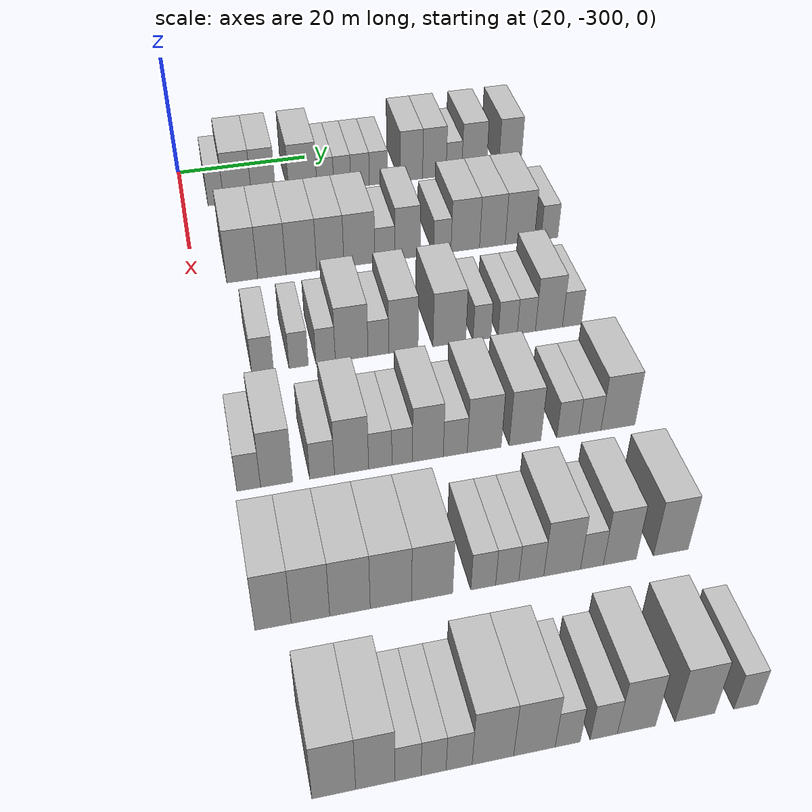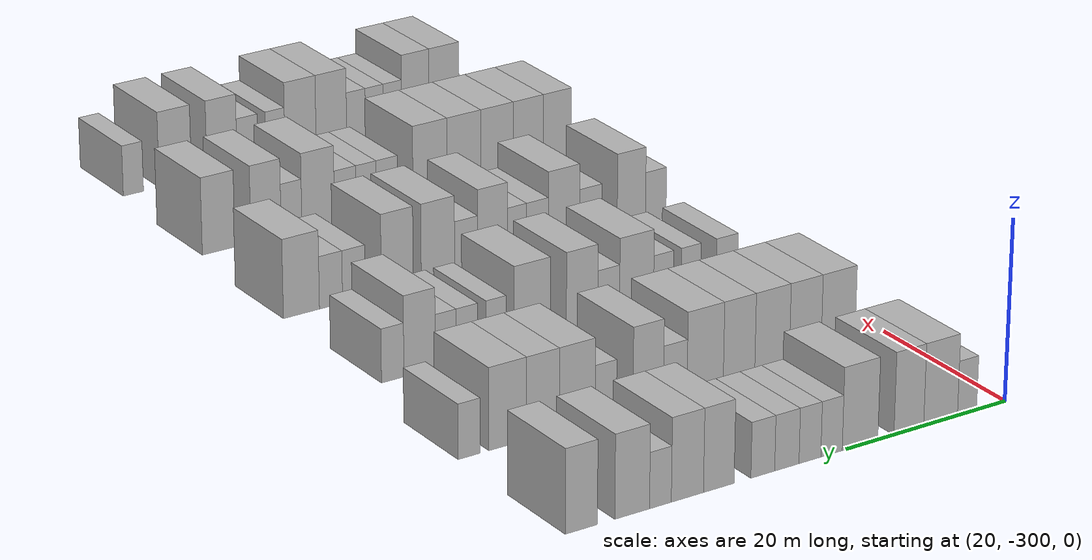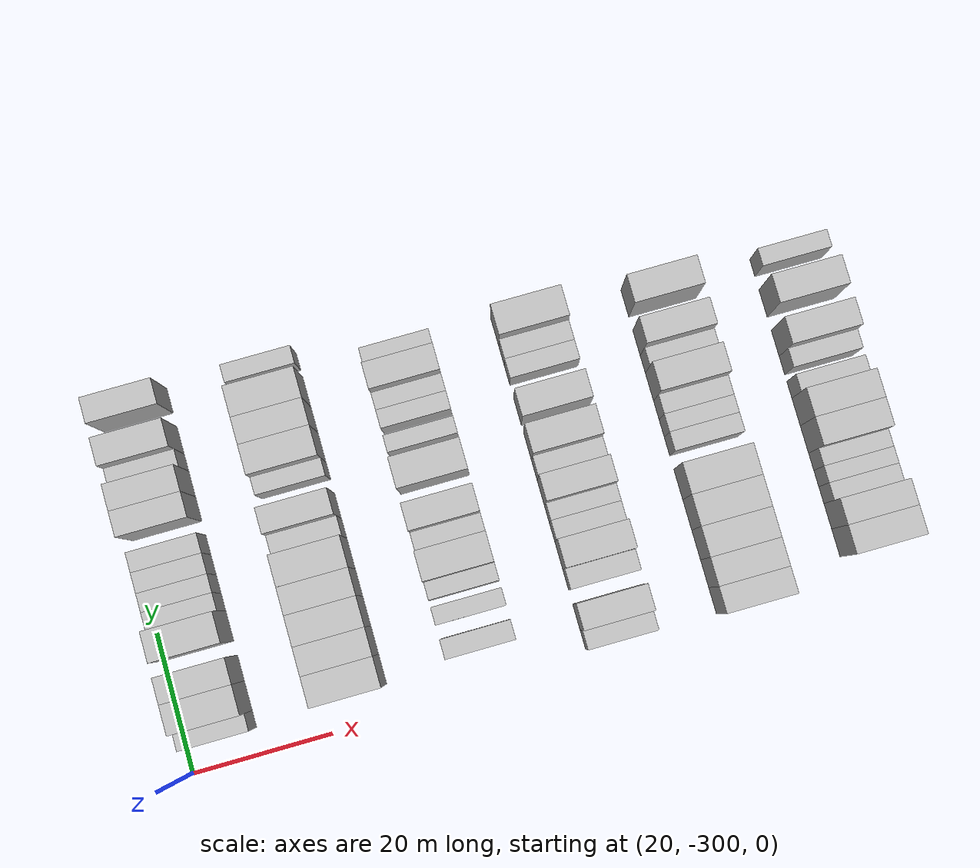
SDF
<sdf version="1.6">
 <world name="default">
  <model name="building_16">
   <static>1</static>
   <pose>25.0000 -295.1014 0 0.000000 0.000000 0.000000</pose>
   <link name="link">
    <pose>0 0 3.00 0 0 0</pose>
    <collision name="collision"><geometry><box><size>10.0000 2.4240 6.0000</size></box></geometry></collision>
    <visual name="visual">
     <cast_shadows>0</cast_shadows>
     <geometry><box><size>10.0000 2.4240 6.0000</size></box></geometry>
     <material>
      <script>
       <uri>model://HANNAS_wall/materials/scripts</uri>
       <uri>model://HANNAS_wall/materials/textures</uri>
       <name>vrc/HANNAS_wall</name>
      </script>
     </material>
    </visual>
   </link>
  </model>
  <model name="building_17">
   <static>1</static>
   <pose>25.0000 -291.7622 0 0.000000 0.000000 0.000000</pose>
   <link name="link">
    <pose>0 0 4.50 0 0 0</pose>
    <collision name="collision"><geometry><box><size>10.0000 4.2544 9.0000</size></box></geometry></collision>
    <visual name="visual">
     <cast_shadows>0</cast_shadows>
     <geometry><box><size>10.0000 4.2544 9.0000</size></box></geometry>
     <material>
      <script>
       <uri>model://HANNAS_wall/materials/scripts</uri>
       <uri>model://HANNAS_wall/materials/textures</uri>
       <name>vrc/HANNAS_wall</name>
      </script>
     </material>
    </visual>
   </link>
  </model>
  <model name="building_18">
   <static>1</static>
   <pose>25.0000 -287.7833 0 0.000000 0.000000 0.000000</pose>
   <link name="link">
    <pose>0 0 4.50 0 0 0</pose>
    <collision name="collision"><geometry><box><size>10.0000 3.7033 9.0000</size></box></geometry></collision>
    <visual name="visual">
     <cast_shadows>0</cast_shadows>
     <geometry><box><size>10.0000 3.7033 9.0000</size></box></geometry>
     <material>
      <script>
       <uri>model://HANNAS_wall/materials/scripts</uri>
       <uri>model://HANNAS_wall/materials/textures</uri>
       <name>vrc/HANNAS_wall</name>
      </script>
     </material>
    </visual>
   </link>
  </model>
  <model name="building_19">
   <static>1</static>
   <pose>25.0000 -281.7414 0 0.000000 0.000000 0.000000</pose>
   <link name="link">
    <pose>0 0 4.50 0 0 0</pose>
    <collision name="collision"><geometry><box><size>10.0000 4.3806 9.0000</size></box></geometry></collision>
    <visual name="visual">
     <cast_shadows>0</cast_shadows>
     <geometry><box><size>10.0000 4.3806 9.0000</size></box></geometry>
     <material>
      <script>
       <uri>model://HANNAS_wall/materials/scripts</uri>
       <uri>model://HANNAS_wall/materials/textures</uri>
       <name>vrc/HANNAS_wall</name>
      </script>
     </material>
    </visual>
   </link>
  </model>
  <model name="building_20">
   <static>1</static>
   <pose>25.0000 -278.2436 0 0.000000 0.000000 0.000000</pose>
   <link name="link">
    <pose>0 0 3.00 0 0 0</pose>
    <collision name="collision"><geometry><box><size>10.0000 2.6150 6.0000</size></box></geometry></collision>
    <visual name="visual">
     <cast_shadows>0</cast_shadows>
     <geometry><box><size>10.0000 2.6150 6.0000</size></box></geometry>
     <material>
      <script>
       <uri>model://HANNAS_wall/materials/scripts</uri>
       <uri>model://HANNAS_wall/materials/textures</uri>
       <name>vrc/HANNAS_wall</name>
      </script>
     </material>
    </visual>
   </link>
  </model>
  <model name="building_21">
   <static>1</static>
   <pose>25.0000 -275.6097 0 0.000000 0.000000 0.000000</pose>
   <link name="link">
    <pose>0 0 3.00 0 0 0</pose>
    <collision name="collision"><geometry><box><size>10.0000 2.6527 6.0000</size></box></geometry></collision>
    <visual name="visual">
     <cast_shadows>0</cast_shadows>
     <geometry><box><size>10.0000 2.6527 6.0000</size></box></geometry>
     <material>
      <script>
       <uri>model://HANNAS_wall/materials/scripts</uri>
       <uri>model://HANNAS_wall/materials/textures</uri>
       <name>vrc/HANNAS_wall</name>
      </script>
     </material>
    </visual>
   </link>
  </model>
  <model name="building_22">
   <static>1</static>
   <pose>25.0000 -272.8170 0 0.000000 0.000000 0.000000</pose>
   <link name="link">
    <pose>0 0 3.00 0 0 0</pose>
    <collision name="collision"><geometry><box><size>10.0000 2.9329 6.0000</size></box></geometry></collision>
    <visual name="visual">
     <cast_shadows>0</cast_shadows>
     <geometry><box><size>10.0000 2.9329 6.0000</size></box></geometry>
     <material>
      <script>
       <uri>model://HANNAS_wall/materials/scripts</uri>
       <uri>model://HANNAS_wall/materials/textures</uri>
       <name>vrc/HANNAS_wall</name>
      </script>
     </material>
    </visual>
   </link>
  </model>
  <model name="building_23">
   <static>1</static>
   <pose>25.0000 -269.9229 0 0.000000 0.000000 0.000000</pose>
   <link name="link">
    <pose>0 0 3.00 0 0 0</pose>
    <collision name="collision"><geometry><box><size>10.0000 2.8552 6.0000</size></box></geometry></collision>
    <visual name="visual">
     <cast_shadows>0</cast_shadows>
     <geometry><box><size>10.0000 2.8552 6.0000</size></box></geometry>
     <material>
      <script>
       <uri>model://HANNAS_wall/materials/scripts</uri>
       <uri>model://HANNAS_wall/materials/textures</uri>
       <name>vrc/HANNAS_wall</name>
      </script>
     </material>
    </visual>
   </link>
  </model>
  <model name="building_24">
   <static>1</static>
   <pose>25.0000 -264.6804 0 0.000000 0.000000 0.000000</pose>
   <link name="link">
    <pose>0 0 4.50 0 0 0</pose>
    <collision name="collision"><geometry><box><size>10.0000 3.6300 9.0000</size></box></geometry></collision>
    <visual name="visual">
     <cast_shadows>0</cast_shadows>
     <geometry><box><size>10.0000 3.6300 9.0000</size></box></geometry>
     <material>
      <script>
       <uri>model://HANNAS_wall/materials/scripts</uri>
       <uri>model://HANNAS_wall/materials/textures</uri>
       <name>vrc/HANNAS_wall</name>
      </script>
     </material>
    </visual>
   </link>
  </model>
  <model name="building_25">
   <static>1</static>
   <pose>25.0000 -260.9767 0 0.000000 0.000000 0.000000</pose>
   <link name="link">
    <pose>0 0 4.50 0 0 0</pose>
    <collision name="collision"><geometry><box><size>10.0000 3.7774 9.0000</size></box></geometry></collision>
    <visual name="visual">
     <cast_shadows>0</cast_shadows>
     <geometry><box><size>10.0000 3.7774 9.0000</size></box></geometry>
     <material>
      <script>
       <uri>model://HANNAS_wall/materials/scripts</uri>
       <uri>model://HANNAS_wall/materials/textures</uri>
       <name>vrc/HANNAS_wall</name>
      </script>
     </material>
    </visual>
   </link>
  </model>
  <model name="building_26">
   <static>1</static>
   <pose>25.0000 -257.8178 0 0.000000 0.000000 0.000000</pose>
   <link name="link">
    <pose>0 0 3.00 0 0 0</pose>
    <collision name="collision"><geometry><box><size>10.0000 2.5404 6.0000</size></box></geometry></collision>
    <visual name="visual">
     <cast_shadows>0</cast_shadows>
     <geometry><box><size>10.0000 2.5404 6.0000</size></box></geometry>
     <material>
      <script>
       <uri>model://HANNAS_wall/materials/scripts</uri>
       <uri>model://HANNAS_wall/materials/textures</uri>
       <name>vrc/HANNAS_wall</name>
      </script>
     </material>
    </visual>
   </link>
  </model>
  <model name="building_27">
   <static>1</static>
   <pose>25.0000 -254.5381 0 0.000000 0.000000 0.000000</pose>
   <link name="link">
    <pose>0 0 4.50 0 0 0</pose>
    <collision name="collision"><geometry><box><size>10.0000 4.0191 9.0000</size></box></geometry></collision>
    <visual name="visual">
     <cast_shadows>0</cast_shadows>
     <geometry><box><size>10.0000 4.0191 9.0000</size></box></geometry>
     <material>
      <script>
       <uri>model://HANNAS_wall/materials/scripts</uri>
       <uri>model://HANNAS_wall/materials/textures</uri>
       <name>vrc/HANNAS_wall</name>
      </script>
     </material>
    </visual>
   </link>
  </model>
  <model name="building_28">
   <static>1</static>
   <pose>25.0000 -248.6928 0 0.000000 0.000000 0.000000</pose>
   <link name="link">
    <pose>0 0 4.50 0 0 0</pose>
    <collision name="collision"><geometry><box><size>10.0000 3.6715 9.0000</size></box></geometry></collision>
    <visual name="visual">
     <cast_shadows>0</cast_shadows>
     <geometry><box><size>10.0000 3.6715 9.0000</size></box></geometry>
     <material>
      <script>
       <uri>model://HANNAS_wall/materials/scripts</uri>
       <uri>model://HANNAS_wall/materials/textures</uri>
       <name>vrc/HANNAS_wall</name>
      </script>
     </material>
    </visual>
   </link>
  </model>
  <model name="building_194">
   <static>1</static>
   <pose>44.0000 -293.3188 0 0.000000 0.000000 0.000000</pose>
   <link name="link">
    <pose>0 0 4.50 0 0 0</pose>
    <collision name="collision"><geometry><box><size>10.0000 4.3488 9.0000</size></box></geometry></collision>
    <visual name="visual">
     <cast_shadows>0</cast_shadows>
     <geometry><box><size>10.0000 4.3488 9.0000</size></box></geometry>
     <material>
      <script>
       <uri>model://HANNAS_wall/materials/scripts</uri>
       <uri>model://HANNAS_wall/materials/textures</uri>
       <name>vrc/HANNAS_wall</name>
      </script>
     </material>
    </visual>
   </link>
  </model>
  <model name="building_195">
   <static>1</static>
   <pose>44.0000 -289.1265 0 0.000000 0.000000 0.000000</pose>
   <link name="link">
    <pose>0 0 4.50 0 0 0</pose>
    <collision name="collision"><geometry><box><size>10.0000 4.0358 9.0000</size></box></geometry></collision>
    <visual name="visual">
     <cast_shadows>0</cast_shadows>
     <geometry><box><size>10.0000 4.0358 9.0000</size></box></geometry>
     <material>
      <script>
       <uri>model://HANNAS_wall/materials/scripts</uri>
       <uri>model://HANNAS_wall/materials/textures</uri>
       <name>vrc/HANNAS_wall</name>
      </script>
     </material>
    </visual>
   </link>
  </model>
  <model name="building_196">
   <static>1</static>
   <pose>44.0000 -284.9333 0 0.000000 0.000000 0.000000</pose>
   <link name="link">
    <pose>0 0 4.50 0 0 0</pose>
    <collision name="collision"><geometry><box><size>10.0000 4.3507 9.0000</size></box></geometry></collision>
    <visual name="visual">
     <cast_shadows>0</cast_shadows>
     <geometry><box><size>10.0000 4.3507 9.0000</size></box></geometry>
     <material>
      <script>
       <uri>model://HANNAS_wall/materials/scripts</uri>
       <uri>model://HANNAS_wall/materials/textures</uri>
       <name>vrc/HANNAS_wall</name>
      </script>
     </material>
    </visual>
   </link>
  </model>
  <model name="building_197">
   <static>1</static>
   <pose>44.0000 -280.7939 0 0.000000 0.000000 0.000000</pose>
   <link name="link">
    <pose>0 0 4.50 0 0 0</pose>
    <collision name="collision"><geometry><box><size>10.0000 3.9281 9.0000</size></box></geometry></collision>
    <visual name="visual">
     <cast_shadows>0</cast_shadows>
     <geometry><box><size>10.0000 3.9281 9.0000</size></box></geometry>
     <material>
      <script>
       <uri>model://HANNAS_wall/materials/scripts</uri>
       <uri>model://HANNAS_wall/materials/textures</uri>
       <name>vrc/HANNAS_wall</name>
      </script>
     </material>
    </visual>
   </link>
  </model>
  <model name="building_198">
   <static>1</static>
   <pose>44.0000 -276.5839 0 0.000000 0.000000 0.000000</pose>
   <link name="link">
    <pose>0 0 4.50 0 0 0</pose>
    <collision name="collision"><geometry><box><size>10.0000 4.4918 9.0000</size></box></geometry></collision>
    <visual name="visual">
     <cast_shadows>0</cast_shadows>
     <geometry><box><size>10.0000 4.4918 9.0000</size></box></geometry>
     <material>
      <script>
       <uri>model://HANNAS_wall/materials/scripts</uri>
       <uri>model://HANNAS_wall/materials/textures</uri>
       <name>vrc/HANNAS_wall</name>
      </script>
     </material>
    </visual>
   </link>
  </model>
  <model name="building_199">
   <static>1</static>
   <pose>44.0000 -272.8861 0 0.000000 0.000000 0.000000</pose>
   <link name="link">
    <pose>0 0 3.00 0 0 0</pose>
    <collision name="collision"><geometry><box><size>10.0000 2.9039 6.0000</size></box></geometry></collision>
    <visual name="visual">
     <cast_shadows>0</cast_shadows>
     <geometry><box><size>10.0000 2.9039 6.0000</size></box></geometry>
     <material>
      <script>
       <uri>model://HANNAS_wall/materials/scripts</uri>
       <uri>model://HANNAS_wall/materials/textures</uri>
       <name>vrc/HANNAS_wall</name>
      </script>
     </material>
    </visual>
   </link>
  </model>
  <model name="building_200">
   <static>1</static>
   <pose>44.0000 -269.5827 0 0.000000 0.000000 0.000000</pose>
   <link name="link">
    <pose>0 0 4.50 0 0 0</pose>
    <collision name="collision"><geometry><box><size>10.0000 3.7027 9.0000</size></box></geometry></collision>
    <visual name="visual">
     <cast_shadows>0</cast_shadows>
     <geometry><box><size>10.0000 3.7027 9.0000</size></box></geometry>
     <material>
      <script>
       <uri>model://HANNAS_wall/materials/scripts</uri>
       <uri>model://HANNAS_wall/materials/textures</uri>
       <name>vrc/HANNAS_wall</name>
      </script>
     </material>
    </visual>
   </link>
  </model>
  <model name="building_201">
   <static>1</static>
   <pose>44.0000 -264.4424 0 0.000000 0.000000 0.000000</pose>
   <link name="link">
    <pose>0 0 3.00 0 0 0</pose>
    <collision name="collision"><geometry><box><size>10.0000 2.5779 6.0000</size></box></geometry></collision>
    <visual name="visual">
     <cast_shadows>0</cast_shadows>
     <geometry><box><size>10.0000 2.5779 6.0000</size></box></geometry>
     <material>
      <script>
       <uri>model://HANNAS_wall/materials/scripts</uri>
       <uri>model://HANNAS_wall/materials/textures</uri>
       <name>vrc/HANNAS_wall</name>
      </script>
     </material>
    </visual>
   </link>
  </model>
  <model name="building_202">
   <static>1</static>
   <pose>44.0000 -261.0156 0 0.000000 0.000000 0.000000</pose>
   <link name="link">
    <pose>0 0 4.50 0 0 0</pose>
    <collision name="collision"><geometry><box><size>10.0000 4.2758 9.0000</size></box></geometry></collision>
    <visual name="visual">
     <cast_shadows>0</cast_shadows>
     <geometry><box><size>10.0000 4.2758 9.0000</size></box></geometry>
     <material>
      <script>
       <uri>model://HANNAS_wall/materials/scripts</uri>
       <uri>model://HANNAS_wall/materials/textures</uri>
       <name>vrc/HANNAS_wall</name>
      </script>
     </material>
    </visual>
   </link>
  </model>
  <model name="building_203">
   <static>1</static>
   <pose>44.0000 -256.9448 0 0.000000 0.000000 0.000000</pose>
   <link name="link">
    <pose>0 0 4.50 0 0 0</pose>
    <collision name="collision"><geometry><box><size>10.0000 3.8658 9.0000</size></box></geometry></collision>
    <visual name="visual">
     <cast_shadows>0</cast_shadows>
     <geometry><box><size>10.0000 3.8658 9.0000</size></box></geometry>
     <material>
      <script>
       <uri>model://HANNAS_wall/materials/scripts</uri>
       <uri>model://HANNAS_wall/materials/textures</uri>
       <name>vrc/HANNAS_wall</name>
      </script>
     </material>
    </visual>
   </link>
  </model>
  <model name="building_204">
   <static>1</static>
   <pose>44.0000 -252.7938 0 0.000000 0.000000 0.000000</pose>
   <link name="link">
    <pose>0 0 4.50 0 0 0</pose>
    <collision name="collision"><geometry><box><size>10.0000 4.4361 9.0000</size></box></geometry></collision>
    <visual name="visual">
     <cast_shadows>0</cast_shadows>
     <geometry><box><size>10.0000 4.4361 9.0000</size></box></geometry>
     <material>
      <script>
       <uri>model://HANNAS_wall/materials/scripts</uri>
       <uri>model://HANNAS_wall/materials/textures</uri>
       <name>vrc/HANNAS_wall</name>
      </script>
     </material>
    </visual>
   </link>
  </model>
  <model name="building_205">
   <static>1</static>
   <pose>44.0000 -248.2876 0 0.000000 0.000000 0.000000</pose>
   <link name="link">
    <pose>0 0 3.00 0 0 0</pose>
    <collision name="collision"><geometry><box><size>10.0000 2.5763 6.0000</size></box></geometry></collision>
    <visual name="visual">
     <cast_shadows>0</cast_shadows>
     <geometry><box><size>10.0000 2.5763 6.0000</size></box></geometry>
     <material>
      <script>
       <uri>model://HANNAS_wall/materials/scripts</uri>
       <uri>model://HANNAS_wall/materials/textures</uri>
       <name>vrc/HANNAS_wall</name>
      </script>
     </material>
    </visual>
   </link>
  </model>
  <model name="building_365">
   <static>1</static>
   <pose>63.0000 -292.9055 0 0.000000 0.000000 0.000000</pose>
   <link name="link">
    <pose>0 0 3.00 0 0 0</pose>
    <collision name="collision"><geometry><box><size>10.0000 2.8064 6.0000</size></box></geometry></collision>
    <visual name="visual">
     <cast_shadows>0</cast_shadows>
     <geometry><box><size>10.0000 2.8064 6.0000</size></box></geometry>
     <material>
      <script>
       <uri>model://HANNAS_wall/materials/scripts</uri>
       <uri>model://HANNAS_wall/materials/textures</uri>
       <name>vrc/HANNAS_wall</name>
      </script>
     </material>
    </visual>
   </link>
  </model>
  <model name="building_366">
   <static>1</static>
   <pose>63.0000 -288.2463 0 0.000000 0.000000 0.000000</pose>
   <link name="link">
    <pose>0 0 3.00 0 0 0</pose>
    <collision name="collision"><geometry><box><size>10.0000 2.5120 6.0000</size></box></geometry></collision>
    <visual name="visual">
     <cast_shadows>0</cast_shadows>
     <geometry><box><size>10.0000 2.5120 6.0000</size></box></geometry>
     <material>
      <script>
       <uri>model://HANNAS_wall/materials/scripts</uri>
       <uri>model://HANNAS_wall/materials/textures</uri>
       <name>vrc/HANNAS_wall</name>
      </script>
     </material>
    </visual>
   </link>
  </model>
  <model name="building_367">
   <static>1</static>
   <pose>63.0000 -284.7206 0 0.000000 0.000000 0.000000</pose>
   <link name="link">
    <pose>0 0 3.00 0 0 0</pose>
    <collision name="collision"><geometry><box><size>10.0000 2.5394 6.0000</size></box></geometry></collision>
    <visual name="visual">
     <cast_shadows>0</cast_shadows>
     <geometry><box><size>10.0000 2.5394 6.0000</size></box></geometry>
     <material>
      <script>
       <uri>model://HANNAS_wall/materials/scripts</uri>
       <uri>model://HANNAS_wall/materials/textures</uri>
       <name>vrc/HANNAS_wall</name>
      </script>
     </material>
    </visual>
   </link>
  </model>
  <model name="building_368">
   <static>1</static>
   <pose>63.0000 -281.2944 0 0.000000 0.000000 0.000000</pose>
   <link name="link">
    <pose>0 0 4.50 0 0 0</pose>
    <collision name="collision"><geometry><box><size>10.0000 4.3131 9.0000</size></box></geometry></collision>
    <visual name="visual">
     <cast_shadows>0</cast_shadows>
     <geometry><box><size>10.0000 4.3131 9.0000</size></box></geometry>
     <material>
      <script>
       <uri>model://HANNAS_wall/materials/scripts</uri>
       <uri>model://HANNAS_wall/materials/textures</uri>
       <name>vrc/HANNAS_wall</name>
      </script>
     </material>
    </visual>
   </link>
  </model>
  <model name="building_369">
   <static>1</static>
   <pose>63.0000 -277.7660 0 0.000000 0.000000 0.000000</pose>
   <link name="link">
    <pose>0 0 3.00 0 0 0</pose>
    <collision name="collision"><geometry><box><size>10.0000 2.7436 6.0000</size></box></geometry></collision>
    <visual name="visual">
     <cast_shadows>0</cast_shadows>
     <geometry><box><size>10.0000 2.7436 6.0000</size></box></geometry>
     <material>
      <script>
       <uri>model://HANNAS_wall/materials/scripts</uri>
       <uri>model://HANNAS_wall/materials/textures</uri>
       <name>vrc/HANNAS_wall</name>
      </script>
     </material>
    </visual>
   </link>
  </model>
  <model name="building_370">
   <static>1</static>
   <pose>63.0000 -274.4286 0 0.000000 0.000000 0.000000</pose>
   <link name="link">
    <pose>0 0 4.50 0 0 0</pose>
    <collision name="collision"><geometry><box><size>10.0000 3.9313 9.0000</size></box></geometry></collision>
    <visual name="visual">
     <cast_shadows>0</cast_shadows>
     <geometry><box><size>10.0000 3.9313 9.0000</size></box></geometry>
     <material>
      <script>
       <uri>model://HANNAS_wall/materials/scripts</uri>
       <uri>model://HANNAS_wall/materials/textures</uri>
       <name>vrc/HANNAS_wall</name>
      </script>
     </material>
    </visual>
   </link>
  </model>
  <model name="building_371">
   <static>1</static>
   <pose>63.0000 -268.2372 0 0.000000 0.000000 0.000000</pose>
   <link name="link">
    <pose>0 0 4.50 0 0 0</pose>
    <collision name="collision"><geometry><box><size>10.0000 4.4514 9.0000</size></box></geometry></collision>
    <visual name="visual">
     <cast_shadows>0</cast_shadows>
     <geometry><box><size>10.0000 4.4514 9.0000</size></box></geometry>
     <material>
      <script>
       <uri>model://HANNAS_wall/materials/scripts</uri>
       <uri>model://HANNAS_wall/materials/textures</uri>
       <name>vrc/HANNAS_wall</name>
      </script>
     </material>
    </visual>
   </link>
  </model>
  <model name="building_372">
   <static>1</static>
   <pose>63.0000 -263.7844 0 0.000000 0.000000 0.000000</pose>
   <link name="link">
    <pose>0 0 3.00 0 0 0</pose>
    <collision name="collision"><geometry><box><size>10.0000 2.4543 6.0000</size></box></geometry></collision>
    <visual name="visual">
     <cast_shadows>0</cast_shadows>
     <geometry><box><size>10.0000 2.4543 6.0000</size></box></geometry>
     <material>
      <script>
       <uri>model://HANNAS_wall/materials/scripts</uri>
       <uri>model://HANNAS_wall/materials/textures</uri>
       <name>vrc/HANNAS_wall</name>
      </script>
     </material>
    </visual>
   </link>
  </model>
  <model name="building_373">
   <static>1</static>
   <pose>63.0000 -260.2393 0 0.000000 0.000000 0.000000</pose>
   <link name="link">
    <pose>0 0 3.00 0 0 0</pose>
    <collision name="collision"><geometry><box><size>10.0000 2.6359 6.0000</size></box></geometry></collision>
    <visual name="visual">
     <cast_shadows>0</cast_shadows>
     <geometry><box><size>10.0000 2.6359 6.0000</size></box></geometry>
     <material>
      <script>
       <uri>model://HANNAS_wall/materials/scripts</uri>
       <uri>model://HANNAS_wall/materials/textures</uri>
       <name>vrc/HANNAS_wall</name>
      </script>
     </material>
    </visual>
   </link>
  </model>
  <model name="building_374">
   <static>1</static>
   <pose>63.0000 -257.6635 0 0.000000 0.000000 0.000000</pose>
   <link name="link">
    <pose>0 0 3.00 0 0 0</pose>
    <collision name="collision"><geometry><box><size>10.0000 2.5157 6.0000</size></box></geometry></collision>
    <visual name="visual">
     <cast_shadows>0</cast_shadows>
     <geometry><box><size>10.0000 2.5157 6.0000</size></box></geometry>
     <material>
      <script>
       <uri>model://HANNAS_wall/materials/scripts</uri>
       <uri>model://HANNAS_wall/materials/textures</uri>
       <name>vrc/HANNAS_wall</name>
      </script>
     </material>
    </visual>
   </link>
  </model>
  <model name="building_375">
   <static>1</static>
   <pose>63.0000 -254.5208 0 0.000000 0.000000 0.000000</pose>
   <link name="link">
    <pose>0 0 4.50 0 0 0</pose>
    <collision name="collision"><geometry><box><size>10.0000 3.7698 9.0000</size></box></geometry></collision>
    <visual name="visual">
     <cast_shadows>0</cast_shadows>
     <geometry><box><size>10.0000 3.7698 9.0000</size></box></geometry>
     <material>
      <script>
       <uri>model://HANNAS_wall/materials/scripts</uri>
       <uri>model://HANNAS_wall/materials/textures</uri>
       <name>vrc/HANNAS_wall</name>
      </script>
     </material>
    </visual>
   </link>
  </model>
  <model name="building_376">
   <static>1</static>
   <pose>63.0000 -251.2973 0 0.000000 0.000000 0.000000</pose>
   <link name="link">
    <pose>0 0 3.00 0 0 0</pose>
    <collision name="collision"><geometry><box><size>10.0000 2.6771 6.0000</size></box></geometry></collision>
    <visual name="visual">
     <cast_shadows>0</cast_shadows>
     <geometry><box><size>10.0000 2.6771 6.0000</size></box></geometry>
     <material>
      <script>
       <uri>model://HANNAS_wall/materials/scripts</uri>
       <uri>model://HANNAS_wall/materials/textures</uri>
       <name>vrc/HANNAS_wall</name>
      </script>
     </material>
    </visual>
   </link>
  </model>
  <model name="building_528">
   <static>1</static>
   <pose>82.0000 -296.9840 0 0.000000 0.000000 0.000000</pose>
   <link name="link">
    <pose>0 0 3.00 0 0 0</pose>
    <collision name="collision"><geometry><box><size>10.0000 2.7547 6.0000</size></box></geometry></collision>
    <visual name="visual">
     <cast_shadows>0</cast_shadows>
     <geometry><box><size>10.0000 2.7547 6.0000</size></box></geometry>
     <material>
      <script>
       <uri>model://HANNAS_wall/materials/scripts</uri>
       <uri>model://HANNAS_wall/materials/textures</uri>
       <name>vrc/HANNAS_wall</name>
      </script>
     </material>
    </visual>
   </link>
  </model>
  <model name="building_529">
   <static>1</static>
   <pose>82.0000 -293.7333 0 0.000000 0.000000 0.000000</pose>
   <link name="link">
    <pose>0 0 4.50 0 0 0</pose>
    <collision name="collision"><geometry><box><size>10.0000 3.7466 9.0000</size></box></geometry></collision>
    <visual name="visual">
     <cast_shadows>0</cast_shadows>
     <geometry><box><size>10.0000 3.7466 9.0000</size></box></geometry>
     <material>
      <script>
       <uri>model://HANNAS_wall/materials/scripts</uri>
       <uri>model://HANNAS_wall/materials/textures</uri>
       <name>vrc/HANNAS_wall</name>
      </script>
     </material>
    </visual>
   </link>
  </model>
  <model name="building_530">
   <static>1</static>
   <pose>82.0000 -288.3901 0 0.000000 0.000000 0.000000</pose>
   <link name="link">
    <pose>0 0 3.00 0 0 0</pose>
    <collision name="collision"><geometry><box><size>10.0000 2.9399 6.0000</size></box></geometry></collision>
    <visual name="visual">
     <cast_shadows>0</cast_shadows>
     <geometry><box><size>10.0000 2.9399 6.0000</size></box></geometry>
     <material>
      <script>
       <uri>model://HANNAS_wall/materials/scripts</uri>
       <uri>model://HANNAS_wall/materials/textures</uri>
       <name>vrc/HANNAS_wall</name>
      </script>
     </material>
    </visual>
   </link>
  </model>
  <model name="building_531">
   <static>1</static>
   <pose>82.0000 -284.8885 0 0.000000 0.000000 0.000000</pose>
   <link name="link">
    <pose>0 0 4.50 0 0 0</pose>
    <collision name="collision"><geometry><box><size>10.0000 4.0633 9.0000</size></box></geometry></collision>
    <visual name="visual">
     <cast_shadows>0</cast_shadows>
     <geometry><box><size>10.0000 4.0633 9.0000</size></box></geometry>
     <material>
      <script>
       <uri>model://HANNAS_wall/materials/scripts</uri>
       <uri>model://HANNAS_wall/materials/textures</uri>
       <name>vrc/HANNAS_wall</name>
      </script>
     </material>
    </visual>
   </link>
  </model>
  <model name="building_532">
   <static>1</static>
   <pose>82.0000 -281.4590 0 0.000000 0.000000 0.000000</pose>
   <link name="link">
    <pose>0 0 3.00 0 0 0</pose>
    <collision name="collision"><geometry><box><size>10.0000 2.7958 6.0000</size></box></geometry></collision>
    <visual name="visual">
     <cast_shadows>0</cast_shadows>
     <geometry><box><size>10.0000 2.7958 6.0000</size></box></geometry>
     <material>
      <script>
       <uri>model://HANNAS_wall/materials/scripts</uri>
       <uri>model://HANNAS_wall/materials/textures</uri>
       <name>vrc/HANNAS_wall</name>
      </script>
     </material>
    </visual>
   </link>
  </model>
  <model name="building_533">
   <static>1</static>
   <pose>82.0000 -278.8245 0 0.000000 0.000000 0.000000</pose>
   <link name="link">
    <pose>0 0 3.00 0 0 0</pose>
    <collision name="collision"><geometry><box><size>10.0000 2.4731 6.0000</size></box></geometry></collision>
    <visual name="visual">
     <cast_shadows>0</cast_shadows>
     <geometry><box><size>10.0000 2.4731 6.0000</size></box></geometry>
     <material>
      <script>
       <uri>model://HANNAS_wall/materials/scripts</uri>
       <uri>model://HANNAS_wall/materials/textures</uri>
       <name>vrc/HANNAS_wall</name>
      </script>
     </material>
    </visual>
   </link>
  </model>
  <model name="building_534">
   <static>1</static>
   <pose>82.0000 -275.7079 0 0.000000 0.000000 0.000000</pose>
   <link name="link">
    <pose>0 0 4.50 0 0 0</pose>
    <collision name="collision"><geometry><box><size>10.0000 3.7602 9.0000</size></box></geometry></collision>
    <visual name="visual">
     <cast_shadows>0</cast_shadows>
     <geometry><box><size>10.0000 3.7602 9.0000</size></box></geometry>
     <material>
      <script>
       <uri>model://HANNAS_wall/materials/scripts</uri>
       <uri>model://HANNAS_wall/materials/textures</uri>
       <name>vrc/HANNAS_wall</name>
      </script>
     </material>
    </visual>
   </link>
  </model>
  <model name="building_535">
   <static>1</static>
   <pose>82.0000 -272.3516 0 0.000000 0.000000 0.000000</pose>
   <link name="link">
    <pose>0 0 3.00 0 0 0</pose>
    <collision name="collision"><geometry><box><size>10.0000 2.9524 6.0000</size></box></geometry></collision>
    <visual name="visual">
     <cast_shadows>0</cast_shadows>
     <geometry><box><size>10.0000 2.9524 6.0000</size></box></geometry>
     <material>
      <script>
       <uri>model://HANNAS_wall/materials/scripts</uri>
       <uri>model://HANNAS_wall/materials/textures</uri>
       <name>vrc/HANNAS_wall</name>
      </script>
     </material>
    </visual>
   </link>
  </model>
  <model name="building_536">
   <static>1</static>
   <pose>82.0000 -268.7733 0 0.000000 0.000000 0.000000</pose>
   <link name="link">
    <pose>0 0 4.50 0 0 0</pose>
    <collision name="collision"><geometry><box><size>10.0000 4.2043 9.0000</size></box></geometry></collision>
    <visual name="visual">
     <cast_shadows>0</cast_shadows>
     <geometry><box><size>10.0000 4.2043 9.0000</size></box></geometry>
     <material>
      <script>
       <uri>model://HANNAS_wall/materials/scripts</uri>
       <uri>model://HANNAS_wall/materials/textures</uri>
       <name>vrc/HANNAS_wall</name>
      </script>
     </material>
    </visual>
   </link>
  </model>
  <model name="building_537">
   <static>1</static>
   <pose>82.0000 -263.6843 0 0.000000 0.000000 0.000000</pose>
   <link name="link">
    <pose>0 0 4.50 0 0 0</pose>
    <collision name="collision"><geometry><box><size>10.0000 3.9737 9.0000</size></box></geometry></collision>
    <visual name="visual">
     <cast_shadows>0</cast_shadows>
     <geometry><box><size>10.0000 3.9737 9.0000</size></box></geometry>
     <material>
      <script>
       <uri>model://HANNAS_wall/materials/scripts</uri>
       <uri>model://HANNAS_wall/materials/textures</uri>
       <name>vrc/HANNAS_wall</name>
      </script>
     </material>
    </visual>
   </link>
  </model>
  <model name="building_538">
   <static>1</static>
   <pose>82.0000 -258.2968 0 0.000000 0.000000 0.000000</pose>
   <link name="link">
    <pose>0 0 3.00 0 0 0</pose>
    <collision name="collision"><geometry><box><size>10.0000 2.8013 6.0000</size></box></geometry></collision>
    <visual name="visual">
     <cast_shadows>0</cast_shadows>
     <geometry><box><size>10.0000 2.8013 6.0000</size></box></geometry>
     <material>
      <script>
       <uri>model://HANNAS_wall/materials/scripts</uri>
       <uri>model://HANNAS_wall/materials/textures</uri>
       <name>vrc/HANNAS_wall</name>
      </script>
     </material>
    </visual>
   </link>
  </model>
  <model name="building_539">
   <static>1</static>
   <pose>82.0000 -255.4819 0 0.000000 0.000000 0.000000</pose>
   <link name="link">
    <pose>0 0 3.00 0 0 0</pose>
    <collision name="collision"><geometry><box><size>10.0000 2.8285 6.0000</size></box></geometry></collision>
    <visual name="visual">
     <cast_shadows>0</cast_shadows>
     <geometry><box><size>10.0000 2.8285 6.0000</size></box></geometry>
     <material>
      <script>
       <uri>model://HANNAS_wall/materials/scripts</uri>
       <uri>model://HANNAS_wall/materials/textures</uri>
       <name>vrc/HANNAS_wall</name>
      </script>
     </material>
    </visual>
   </link>
  </model>
  <model name="building_540">
   <static>1</static>
   <pose>82.0000 -251.8763 0 0.000000 0.000000 0.000000</pose>
   <link name="link">
    <pose>0 0 4.50 0 0 0</pose>
    <collision name="collision"><geometry><box><size>10.0000 4.3826 9.0000</size></box></geometry></collision>
    <visual name="visual">
     <cast_shadows>0</cast_shadows>
     <geometry><box><size>10.0000 4.3826 9.0000</size></box></geometry>
     <material>
      <script>
       <uri>model://HANNAS_wall/materials/scripts</uri>
       <uri>model://HANNAS_wall/materials/textures</uri>
       <name>vrc/HANNAS_wall</name>
      </script>
     </material>
    </visual>
   </link>
  </model>
  <model name="building_696">
   <static>1</static>
   <pose>101.0000 -296.7371 0 0.000000 0.000000 0.000000</pose>
   <link name="link">
    <pose>0 0 4.50 0 0 0</pose>
    <collision name="collision"><geometry><box><size>10.0000 3.7828 9.0000</size></box></geometry></collision>
    <visual name="visual">
     <cast_shadows>0</cast_shadows>
     <geometry><box><size>10.0000 3.7828 9.0000</size></box></geometry>
     <material>
      <script>
       <uri>model://HANNAS_wall/materials/scripts</uri>
       <uri>model://HANNAS_wall/materials/textures</uri>
       <name>vrc/HANNAS_wall</name>
      </script>
     </material>
    </visual>
   </link>
  </model>
  <model name="building_697">
   <static>1</static>
   <pose>101.0000 -292.8207 0 0.000000 0.000000 0.000000</pose>
   <link name="link">
    <pose>0 0 4.50 0 0 0</pose>
    <collision name="collision"><geometry><box><size>10.0000 4.0500 9.0000</size></box></geometry></collision>
    <visual name="visual">
     <cast_shadows>0</cast_shadows>
     <geometry><box><size>10.0000 4.0500 9.0000</size></box></geometry>
     <material>
      <script>
       <uri>model://HANNAS_wall/materials/scripts</uri>
       <uri>model://HANNAS_wall/materials/textures</uri>
       <name>vrc/HANNAS_wall</name>
      </script>
     </material>
    </visual>
   </link>
  </model>
  <model name="building_698">
   <static>1</static>
   <pose>101.0000 -288.6400 0 0.000000 0.000000 0.000000</pose>
   <link name="link">
    <pose>0 0 4.50 0 0 0</pose>
    <collision name="collision"><geometry><box><size>10.0000 4.3113 9.0000</size></box></geometry></collision>
    <visual name="visual">
     <cast_shadows>0</cast_shadows>
     <geometry><box><size>10.0000 4.3113 9.0000</size></box></geometry>
     <material>
      <script>
       <uri>model://HANNAS_wall/materials/scripts</uri>
       <uri>model://HANNAS_wall/materials/textures</uri>
       <name>vrc/HANNAS_wall</name>
      </script>
     </material>
    </visual>
   </link>
  </model>
  <model name="building_699">
   <static>1</static>
   <pose>101.0000 -284.2552 0 0.000000 0.000000 0.000000</pose>
   <link name="link">
    <pose>0 0 4.50 0 0 0</pose>
    <collision name="collision"><geometry><box><size>10.0000 4.4583 9.0000</size></box></geometry></collision>
    <visual name="visual">
     <cast_shadows>0</cast_shadows>
     <geometry><box><size>10.0000 4.4583 9.0000</size></box></geometry>
     <material>
      <script>
       <uri>model://HANNAS_wall/materials/scripts</uri>
       <uri>model://HANNAS_wall/materials/textures</uri>
       <name>vrc/HANNAS_wall</name>
      </script>
     </material>
    </visual>
   </link>
  </model>
  <model name="building_700">
   <static>1</static>
   <pose>101.0000 -279.7904 0 0.000000 0.000000 0.000000</pose>
   <link name="link">
    <pose>0 0 4.50 0 0 0</pose>
    <collision name="collision"><geometry><box><size>10.0000 4.4711 9.0000</size></box></geometry></collision>
    <visual name="visual">
     <cast_shadows>0</cast_shadows>
     <geometry><box><size>10.0000 4.4711 9.0000</size></box></geometry>
     <material>
      <script>
       <uri>model://HANNAS_wall/materials/scripts</uri>
       <uri>model://HANNAS_wall/materials/textures</uri>
       <name>vrc/HANNAS_wall</name>
      </script>
     </material>
    </visual>
   </link>
  </model>
  <model name="building_701">
   <static>1</static>
   <pose>101.0000 -274.1819 0 0.000000 0.000000 0.000000</pose>
   <link name="link">
    <pose>0 0 3.00 0 0 0</pose>
    <collision name="collision"><geometry><box><size>10.0000 2.7459 6.0000</size></box></geometry></collision>
    <visual name="visual">
     <cast_shadows>0</cast_shadows>
     <geometry><box><size>10.0000 2.7459 6.0000</size></box></geometry>
     <material>
      <script>
       <uri>model://HANNAS_wall/materials/scripts</uri>
       <uri>model://HANNAS_wall/materials/textures</uri>
       <name>vrc/HANNAS_wall</name>
      </script>
     </material>
    </visual>
   </link>
  </model>
  <model name="building_702">
   <static>1</static>
   <pose>101.0000 -271.5201 0 0.000000 0.000000 0.000000</pose>
   <link name="link">
    <pose>0 0 3.00 0 0 0</pose>
    <collision name="collision"><geometry><box><size>10.0000 2.5777 6.0000</size></box></geometry></collision>
    <visual name="visual">
     <cast_shadows>0</cast_shadows>
     <geometry><box><size>10.0000 2.5777 6.0000</size></box></geometry>
     <material>
      <script>
       <uri>model://HANNAS_wall/materials/scripts</uri>
       <uri>model://HANNAS_wall/materials/textures</uri>
       <name>vrc/HANNAS_wall</name>
      </script>
     </material>
    </visual>
   </link>
  </model>
  <model name="building_703">
   <static>1</static>
   <pose>101.0000 -268.8283 0 0.000000 0.000000 0.000000</pose>
   <link name="link">
    <pose>0 0 3.00 0 0 0</pose>
    <collision name="collision"><geometry><box><size>10.0000 2.8059 6.0000</size></box></geometry></collision>
    <visual name="visual">
     <cast_shadows>0</cast_shadows>
     <geometry><box><size>10.0000 2.8059 6.0000</size></box></geometry>
     <material>
      <script>
       <uri>model://HANNAS_wall/materials/scripts</uri>
       <uri>model://HANNAS_wall/materials/textures</uri>
       <name>vrc/HANNAS_wall</name>
      </script>
     </material>
    </visual>
   </link>
  </model>
  <model name="building_704">
   <static>1</static>
   <pose>101.0000 -265.3489 0 0.000000 0.000000 0.000000</pose>
   <link name="link">
    <pose>0 0 4.50 0 0 0</pose>
    <collision name="collision"><geometry><box><size>10.0000 4.1527 9.0000</size></box></geometry></collision>
    <visual name="visual">
     <cast_shadows>0</cast_shadows>
     <geometry><box><size>10.0000 4.1527 9.0000</size></box></geometry>
     <material>
      <script>
       <uri>model://HANNAS_wall/materials/scripts</uri>
       <uri>model://HANNAS_wall/materials/textures</uri>
       <name>vrc/HANNAS_wall</name>
      </script>
     </material>
    </visual>
   </link>
  </model>
  <model name="building_705">
   <static>1</static>
   <pose>101.0000 -261.9634 0 0.000000 0.000000 0.000000</pose>
   <link name="link">
    <pose>0 0 3.00 0 0 0</pose>
    <collision name="collision"><geometry><box><size>10.0000 2.6184 6.0000</size></box></geometry></collision>
    <visual name="visual">
     <cast_shadows>0</cast_shadows>
     <geometry><box><size>10.0000 2.6184 6.0000</size></box></geometry>
     <material>
      <script>
       <uri>model://HANNAS_wall/materials/scripts</uri>
       <uri>model://HANNAS_wall/materials/textures</uri>
       <name>vrc/HANNAS_wall</name>
      </script>
     </material>
    </visual>
   </link>
  </model>
  <model name="building_706">
   <static>1</static>
   <pose>101.0000 -258.7551 0 0.000000 0.000000 0.000000</pose>
   <link name="link">
    <pose>0 0 4.50 0 0 0</pose>
    <collision name="collision"><geometry><box><size>10.0000 3.7982 9.0000</size></box></geometry></collision>
    <visual name="visual">
     <cast_shadows>0</cast_shadows>
     <geometry><box><size>10.0000 3.7982 9.0000</size></box></geometry>
     <material>
      <script>
       <uri>model://HANNAS_wall/materials/scripts</uri>
       <uri>model://HANNAS_wall/materials/textures</uri>
       <name>vrc/HANNAS_wall</name>
      </script>
     </material>
    </visual>
   </link>
  </model>
  <model name="building_707">
   <static>1</static>
   <pose>101.0000 -252.8310 0 0.000000 0.000000 0.000000</pose>
   <link name="link">
    <pose>0 0 4.50 0 0 0</pose>
    <collision name="collision"><geometry><box><size>10.0000 4.0500 9.0000</size></box></geometry></collision>
    <visual name="visual">
     <cast_shadows>0</cast_shadows>
     <geometry><box><size>10.0000 4.0500 9.0000</size></box></geometry>
     <material>
      <script>
       <uri>model://HANNAS_wall/materials/scripts</uri>
       <uri>model://HANNAS_wall/materials/textures</uri>
       <name>vrc/HANNAS_wall</name>
      </script>
     </material>
    </visual>
   </link>
  </model>
  <model name="building_874">
   <static>1</static>
   <pose>120.0000 -293.7134 0 0.000000 0.000000 0.000000</pose>
   <link name="link">
    <pose>0 0 4.50 0 0 0</pose>
    <collision name="collision"><geometry><box><size>10.0000 4.0948 9.0000</size></box></geometry></collision>
    <visual name="visual">
     <cast_shadows>0</cast_shadows>
     <geometry><box><size>10.0000 4.0948 9.0000</size></box></geometry>
     <material>
      <script>
       <uri>model://HANNAS_wall/materials/scripts</uri>
       <uri>model://HANNAS_wall/materials/textures</uri>
       <name>vrc/HANNAS_wall</name>
      </script>
     </material>
    </visual>
   </link>
  </model>
  <model name="building_875">
   <static>1</static>
   <pose>120.0000 -289.8139 0 0.000000 0.000000 0.000000</pose>
   <link name="link">
    <pose>0 0 4.50 0 0 0</pose>
    <collision name="collision"><geometry><box><size>10.0000 3.7043 9.0000</size></box></geometry></collision>
    <visual name="visual">
     <cast_shadows>0</cast_shadows>
     <geometry><box><size>10.0000 3.7043 9.0000</size></box></geometry>
     <material>
      <script>
       <uri>model://HANNAS_wall/materials/scripts</uri>
       <uri>model://HANNAS_wall/materials/textures</uri>
       <name>vrc/HANNAS_wall</name>
      </script>
     </material>
    </visual>
   </link>
  </model>
  <model name="building_876">
   <static>1</static>
   <pose>120.0000 -286.7171 0 0.000000 0.000000 0.000000</pose>
   <link name="link">
    <pose>0 0 3.00 0 0 0</pose>
    <collision name="collision"><geometry><box><size>10.0000 2.4894 6.0000</size></box></geometry></collision>
    <visual name="visual">
     <cast_shadows>0</cast_shadows>
     <geometry><box><size>10.0000 2.4894 6.0000</size></box></geometry>
     <material>
      <script>
       <uri>model://HANNAS_wall/materials/scripts</uri>
       <uri>model://HANNAS_wall/materials/textures</uri>
       <name>vrc/HANNAS_wall</name>
      </script>
     </material>
    </visual>
   </link>
  </model>
  <model name="building_877">
   <static>1</static>
   <pose>120.0000 -284.2723 0 0.000000 0.000000 0.000000</pose>
   <link name="link">
    <pose>0 0 3.00 0 0 0</pose>
    <collision name="collision"><geometry><box><size>10.0000 2.4002 6.0000</size></box></geometry></collision>
    <visual name="visual">
     <cast_shadows>0</cast_shadows>
     <geometry><box><size>10.0000 2.4002 6.0000</size></box></geometry>
     <material>
      <script>
       <uri>model://HANNAS_wall/materials/scripts</uri>
       <uri>model://HANNAS_wall/materials/textures</uri>
       <name>vrc/HANNAS_wall</name>
      </script>
     </material>
    </visual>
   </link>
  </model>
  <model name="building_878">
   <static>1</static>
   <pose>120.0000 -281.8146 0 0.000000 0.000000 0.000000</pose>
   <link name="link">
    <pose>0 0 3.00 0 0 0</pose>
    <collision name="collision"><geometry><box><size>10.0000 2.5152 6.0000</size></box></geometry></collision>
    <visual name="visual">
     <cast_shadows>0</cast_shadows>
     <geometry><box><size>10.0000 2.5152 6.0000</size></box></geometry>
     <material>
      <script>
       <uri>model://HANNAS_wall/materials/scripts</uri>
       <uri>model://HANNAS_wall/materials/textures</uri>
       <name>vrc/HANNAS_wall</name>
      </script>
     </material>
    </visual>
   </link>
  </model>
  <model name="building_879">
   <static>1</static>
   <pose>120.0000 -278.5254 0 0.000000 0.000000 0.000000</pose>
   <link name="link">
    <pose>0 0 4.50 0 0 0</pose>
    <collision name="collision"><geometry><box><size>10.0000 4.0633 9.0000</size></box></geometry></collision>
    <visual name="visual">
     <cast_shadows>0</cast_shadows>
     <geometry><box><size>10.0000 4.0633 9.0000</size></box></geometry>
     <material>
      <script>
       <uri>model://HANNAS_wall/materials/scripts</uri>
       <uri>model://HANNAS_wall/materials/textures</uri>
       <name>vrc/HANNAS_wall</name>
      </script>
     </material>
    </visual>
   </link>
  </model>
  <model name="building_880">
   <static>1</static>
   <pose>120.0000 -274.4404 0 0.000000 0.000000 0.000000</pose>
   <link name="link">
    <pose>0 0 4.50 0 0 0</pose>
    <collision name="collision"><geometry><box><size>10.0000 4.1067 9.0000</size></box></geometry></collision>
    <visual name="visual">
     <cast_shadows>0</cast_shadows>
     <geometry><box><size>10.0000 4.1067 9.0000</size></box></geometry>
     <material>
      <script>
       <uri>model://HANNAS_wall/materials/scripts</uri>
       <uri>model://HANNAS_wall/materials/textures</uri>
       <name>vrc/HANNAS_wall</name>
      </script>
     </material>
    </visual>
   </link>
  </model>
  <model name="building_881">
   <static>1</static>
   <pose>120.0000 -271.1345 0 0.000000 0.000000 0.000000</pose>
   <link name="link">
    <pose>0 0 3.00 0 0 0</pose>
    <collision name="collision"><geometry><box><size>10.0000 2.5050 6.0000</size></box></geometry></collision>
    <visual name="visual">
     <cast_shadows>0</cast_shadows>
     <geometry><box><size>10.0000 2.5050 6.0000</size></box></geometry>
     <material>
      <script>
       <uri>model://HANNAS_wall/materials/scripts</uri>
       <uri>model://HANNAS_wall/materials/textures</uri>
       <name>vrc/HANNAS_wall</name>
      </script>
     </material>
    </visual>
   </link>
  </model>
  <model name="building_882">
   <static>1</static>
   <pose>120.0000 -267.5091 0 0.000000 0.000000 0.000000</pose>
   <link name="link">
    <pose>0 0 3.00 0 0 0</pose>
    <collision name="collision"><geometry><box><size>10.0000 2.7459 6.0000</size></box></geometry></collision>
    <visual name="visual">
     <cast_shadows>0</cast_shadows>
     <geometry><box><size>10.0000 2.7459 6.0000</size></box></geometry>
     <material>
      <script>
       <uri>model://HANNAS_wall/materials/scripts</uri>
       <uri>model://HANNAS_wall/materials/textures</uri>
       <name>vrc/HANNAS_wall</name>
      </script>
     </material>
    </visual>
   </link>
  </model>
  <model name="building_883">
   <static>1</static>
   <pose>120.0000 -264.1934 0 0.000000 0.000000 0.000000</pose>
   <link name="link">
    <pose>0 0 4.50 0 0 0</pose>
    <collision name="collision"><geometry><box><size>10.0000 3.8853 9.0000</size></box></geometry></collision>
    <visual name="visual">
     <cast_shadows>0</cast_shadows>
     <geometry><box><size>10.0000 3.8853 9.0000</size></box></geometry>
     <material>
      <script>
       <uri>model://HANNAS_wall/materials/scripts</uri>
       <uri>model://HANNAS_wall/materials/textures</uri>
       <name>vrc/HANNAS_wall</name>
      </script>
     </material>
    </visual>
   </link>
  </model>
  <model name="building_884">
   <static>1</static>
   <pose>120.0000 -258.1874 0 0.000000 0.000000 0.000000</pose>
   <link name="link">
    <pose>0 0 4.50 0 0 0</pose>
    <collision name="collision"><geometry><box><size>10.0000 4.1268 9.0000</size></box></geometry></collision>
    <visual name="visual">
     <cast_shadows>0</cast_shadows>
     <geometry><box><size>10.0000 4.1268 9.0000</size></box></geometry>
     <material>
      <script>
       <uri>model://HANNAS_wall/materials/scripts</uri>
       <uri>model://HANNAS_wall/materials/textures</uri>
       <name>vrc/HANNAS_wall</name>
      </script>
     </material>
    </visual>
   </link>
  </model>
  <model name="building_885">
   <static>1</static>
   <pose>120.0000 -252.8468 0 0.000000 0.000000 0.000000</pose>
   <link name="link">
    <pose>0 0 3.00 0 0 0</pose>
    <collision name="collision"><geometry><box><size>10.0000 2.5543 6.0000</size></box></geometry></collision>
    <visual name="visual">
     <cast_shadows>0</cast_shadows>
     <geometry><box><size>10.0000 2.5543 6.0000</size></box></geometry>
     <material>
      <script>
       <uri>model://HANNAS_wall/materials/scripts</uri>
       <uri>model://HANNAS_wall/materials/textures</uri>
       <name>vrc/HANNAS_wall</name>
      </script>
     </material>
    </visual>
   </link>
  </model>
 </world>
</sdf>
